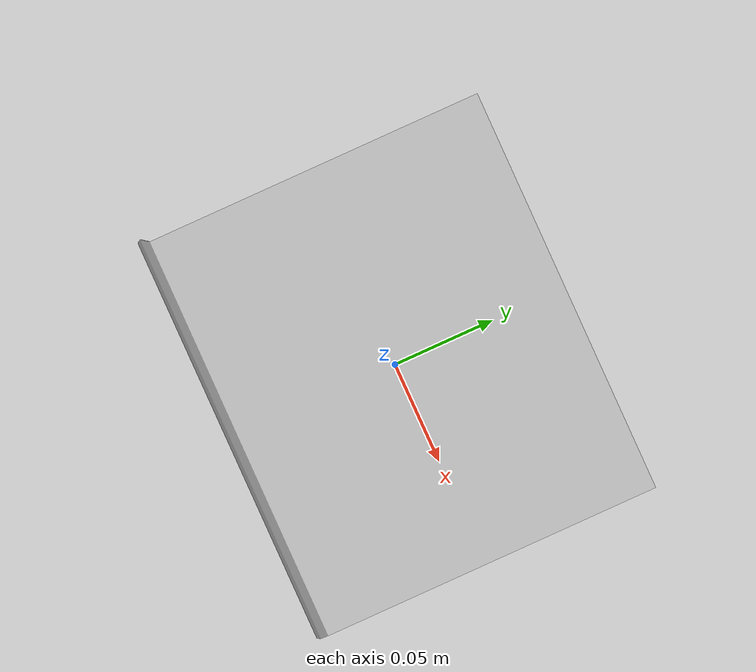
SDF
<?xml version='1.0'?>
<sdf version='1.4'>
  <model name='148'>
    <pose>0 0 0 0 0 0</pose>
    <static>true</static>
    <link name='link'>
      <collision name='collision'>
        <pose>0 0 0 0 0 0</pose>
        <geometry>
          <box>
            <size>0.2 0.17 0</size>
          </box>
        </geometry>
      </collision>
      <visual name='visual'>
        <pose>0 0 0 0 0 0</pose>
        <geometry>
          <mesh><uri>model://148/148.dae</uri></mesh>
        </geometry>
      </visual>
    </link>
  </model>
</sdf>
